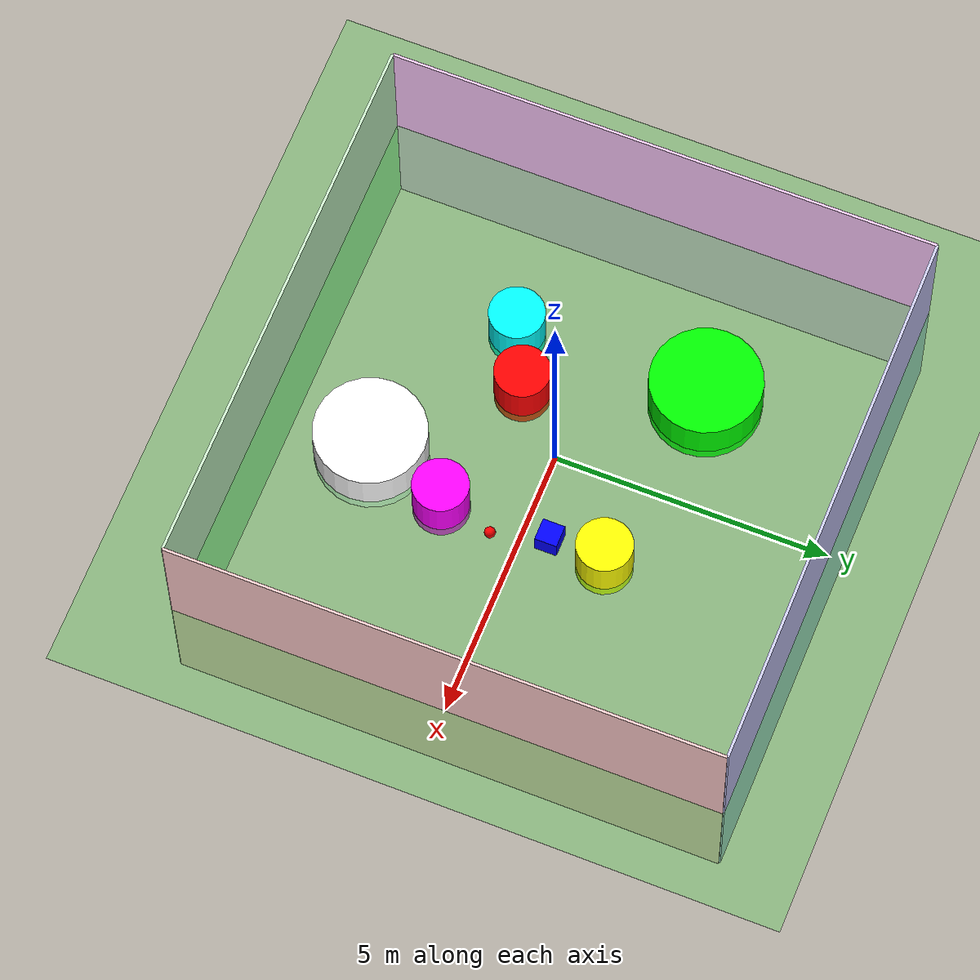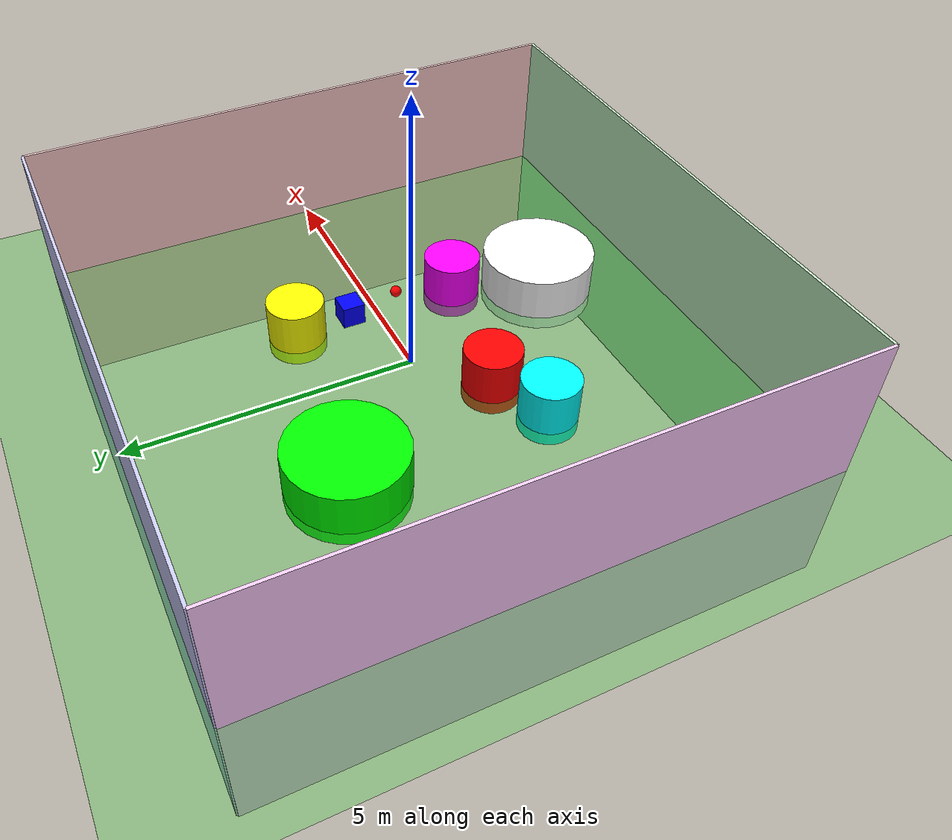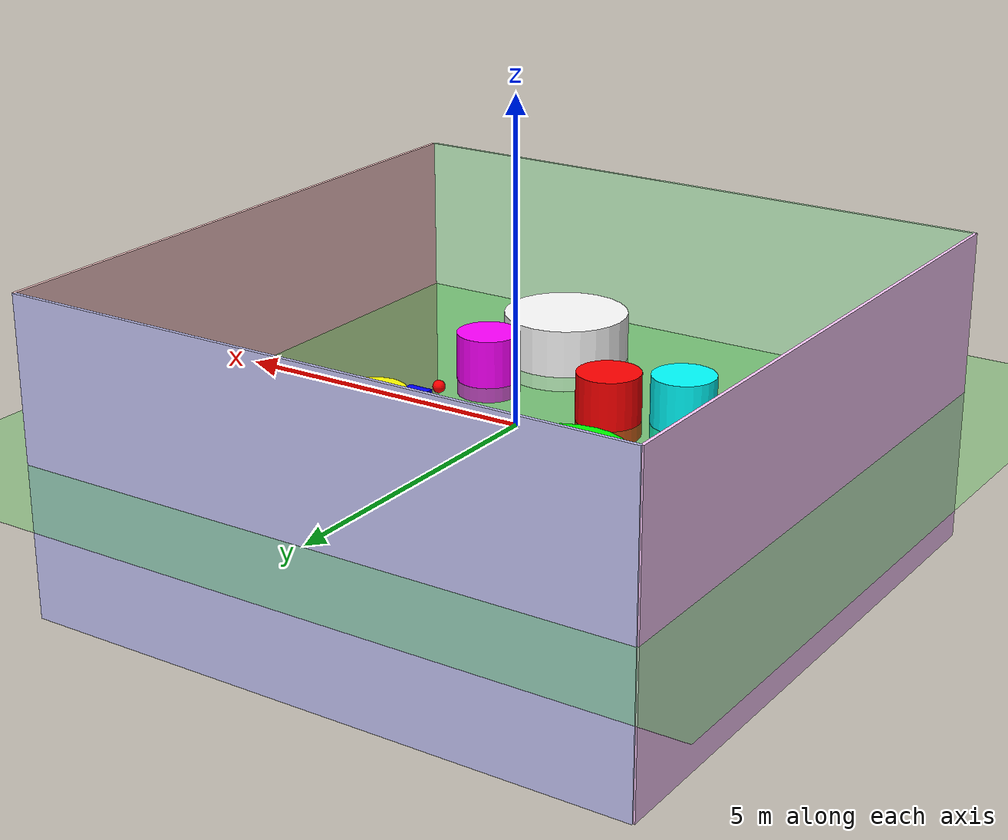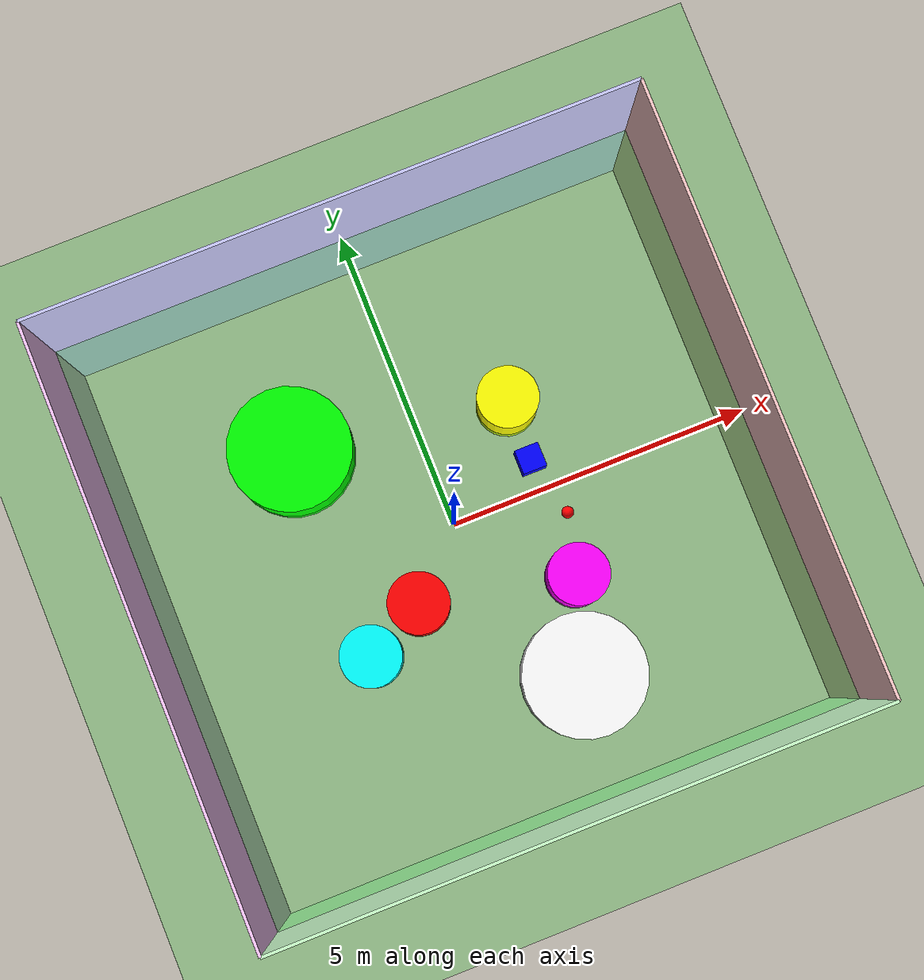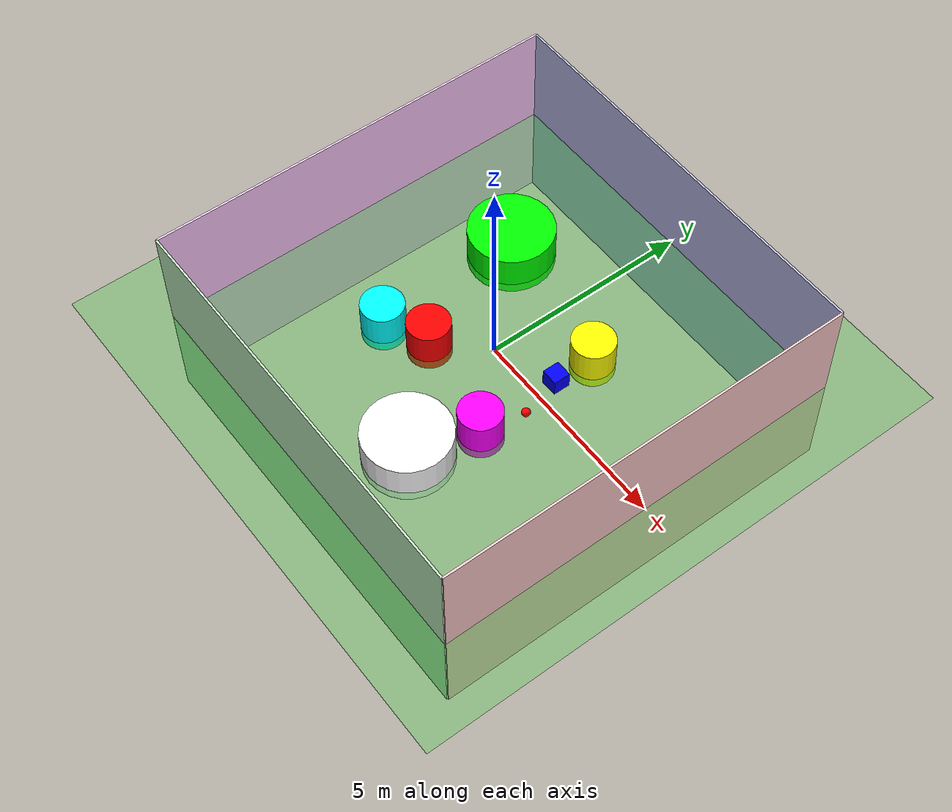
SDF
<?xml version="1.0" ?>
<sdf version="1.8">
  <world name="dogworld">
    <physics name="1ms" type="ignored">
      <max_step_size>0.001</max_step_size>
      <real_time_factor>1.0</real_time_factor>
    </physics>

    <!-- Plugins -->
    <plugin
      filename="gz-sim-physics-system"
      name="gz::sim::systems::Physics">
    </plugin>
    <plugin
      filename="gz-sim-sensors-system"
      name="gz::sim::systems::Sensors">
      <render_engine>ogre2</render_engine>
    </plugin>
    <plugin
      filename="gz-sim-user-commands-system"
      name="gz::sim::systems::UserCommands">
    </plugin>
    <plugin
      filename="gz-sim-scene-broadcaster-system"
      name="gz::sim::systems::SceneBroadcaster">
    </plugin>

    <gui fullscreen="0">
        <plugin filename="ImageDisplay" name="Image Display">
          <ignition-gui>
            <property key="state" type="string">docked</property>
          </ignition-gui>
        </plugin>
    </gui>

    <!-- Lights -->
    <light type="directional" name="sun">
      <cast_shadows>true</cast_shadows>
      <pose>0 0 10 0 0 0</pose>
      <diffuse>0.8 0.8 0.8 1</diffuse>
      <specular>0.2 0.2 0.2 1</specular>
      <attenuation>
        <range>1000</range>
        <constant>0.9</constant>
        <linear>0.01</linear>
        <quadratic>0.001</quadratic>
      </attenuation>
      <direction>-0.5 0.1 -0.9</direction>
    </light>

    <!-- Ground Plane -->
    <model name="ground_plane">
      <static>true</static>
      <link name="link">
        <collision name="collision">
          <geometry>
            <plane>
              <normal>0 0 1</normal>
              <size>100 100</size>
            </plane>
          </geometry>
        </collision>
        <visual name="visual">
          <geometry>
            <plane>
              <normal>0 0 1</normal>
              <size>100 100</size>
            </plane>
          </geometry>
          <material>
            <ambient>0.2 0.8 0.2 1</ambient>
            <diffuse>0.2 0.8 0.2 1</diffuse>
            <specular>0.2 0.8 0.2 1</specular>
          </material>
        </visual>
      </link>
    </model>

    <!-- RedBall -->
    <model name="RedBall">
      <pose>1.75 -0.5 0.1 0 0 0</pose>
      <link name="sphere_link">
        <inertial>
          <inertia>
            <ixx>0.004</ixx>
            <ixy>0</ixy>
            <ixz>0</ixz>
            <iyy>0.004</iyy>
            <iyz>0</iyz>
            <izz>0.004</izz>
          </inertia>
          <mass>0.1</mass>
        </inertial>
        <collision name="sphere_collision">
          <geometry>
            <sphere>
              <radius>0.1</radius>
            </sphere>
          </geometry>
        </collision>
        <visual name="sphere_visual">
          <geometry>
            <sphere>
              <radius>0.1</radius>
            </sphere>
          </geometry>
          <material>
            <ambient>1 0 0 1</ambient>
            <diffuse>1 0 0 1</diffuse>
            <specular>1 0 0 1</specular>
          </material>
        </visual>
      </link>
      <static>true</static>
    </model>

    <!-- BlueBox -->
    <model name="BlueBox">
      <pose>1.5 0.5 0.2 0 0 0</pose>
      <link name="box_link">
        <inertial>
          <inertia>
            <ixx>0.013</ixx>
            <ixy>0</ixy>
            <ixz>0</ixz>
            <iyy>0.013</iyy>
            <iyz>0</iyz>
            <izz>0.013</izz>
          </inertia>
          <mass>0.5</mass>
        </inertial>
        <collision name="box_collision">
          <geometry>
            <box>
              <size>0.4 0.4 0.4</size>
            </box>
          </geometry>
        </collision>
        <visual name="box_visual">
          <geometry>
            <box>
              <size>0.4 0.4 0.4</size>
            </box>
          </geometry>
          <material>
            <ambient>0 0 1 1</ambient>
            <diffuse>0 0 1 1</diffuse>
            <specular>0 0 1 1</specular>
          </material>
        </visual>
      </link>
      <static>true</static>
    </model>

    <!-- Yellow Cylinder -->
    <model name="yellow_cylinder">
      <pose>1.5 1.5 0.25 0 0 0</pose>
      <link name="cylinder1_link">
        <inertial>
          <inertia>
            <ixx>0.1458</ixx>
            <ixy>0</ixy>
            <ixz>0</ixz>
            <iyy>0.1458</iyy>
            <iyz>0</iyz>
            <izz>0.125</izz>
          </inertia>
          <mass>1.0</mass>
        </inertial>
        <collision name="cylinder1_collision">
          <geometry>
            <cylinder>
              <radius>0.5</radius>
              <length>1.0</length>
            </cylinder>
          </geometry>
        </collision>
        <visual name="cylinder1_visual">
          <geometry>
            <cylinder>
              <radius>0.5</radius>
              <length>1.0</length>
            </cylinder>
          </geometry>
          <material>
            <ambient>1 1 0 1</ambient>
            <diffuse>1 1 0 1</diffuse>
            <specular>1 1 0 1</specular>
          </material>
        </visual>
      </link>
      <static>true</static>
    </model>

    <!-- Cyan Cylinder -->
    <model name="cyan_cylinder">
      <pose>-2 -1.5 0.25 0 0 0</pose>
      <link name="cylinder2_link">
        <inertial>
          <inertia>
            <ixx>0.1458</ixx>
            <ixy>0</ixy>
            <ixz>0</ixz>
            <iyy>0.1458</iyy>
            <iyz>0</iyz>
            <izz>0.125</izz>
          </inertia>
          <mass>1.0</mass>
        </inertial>
        <collision name="cylinder2_collision">
          <geometry>
            <cylinder>
              <radius>0.5</radius>
              <length>1.0</length>
            </cylinder>
          </geometry>
        </collision>
        <visual name="cylinder2_visual">
          <geometry>
            <cylinder>
              <radius>0.5</radius>
              <length>1.0</length>
            </cylinder>
          </geometry>
          <material>
            <ambient>0 1 1 1</ambient>
            <diffuse>0 1 1 1</diffuse>
            <specular>0 1 1 1</specular>
          </material>
        </visual>
      </link>
      <static>true</static>
    </model>

    <!-- Magenta Cylinder -->
    <model name="magenta_cylider">
      <pose>1.5 -1.5 0.25 0 0 0</pose>
      <link name="cylinder3_link">
        <inertial>
          <inertia>
            <ixx>0.1458</ixx>
            <ixy>0</ixy>
            <ixz>0</ixz>
            <iyy>0.1458</iyy>
            <iyz>0</iyz>
            <izz>0.125</izz>
          </inertia>
          <mass>1.0</mass>
        </inertial>
        <collision name="cylinder3_collision">
          <geometry>
            <cylinder>
              <radius>0.5</radius>
              <length>1.0</length>
            </cylinder>
          </geometry>
        </collision>
        <visual name="cylinder3_visual">
          <geometry>
            <cylinder>
              <radius>0.5</radius>
              <length>1.0</length>
            </cylinder>
          </geometry>
          <material>
            <ambient>1 0 1 1</ambient>
            <diffuse>1 0 1 1</diffuse>
            <specular>1 0 1 1</specular>
          </material>
        </visual>
      </link>
      <static>true</static>
    </model>

    <!-- Red Cylinder -->
    <model name="red_cylider">
      <pose>-1 -1 0.25 0 0 0</pose>
      <link name="cylinder4_link">
        <inertial>
          <inertia>
            <ixx>0.1458</ixx>
            <ixy>0</ixy>
            <ixz>0</ixz>
            <iyy>0.1458</iyy>
            <iyz>0</iyz>
            <izz>0.125</izz>
          </inertia>
          <mass>1.0</mass>
        </inertial>
        <collision name="cylinder4_collision">
          <geometry>
            <cylinder>
              <radius>0.5</radius>
              <length>1.0</length>
            </cylinder>
          </geometry>
        </collision>
        <visual name="cylinder4_visual">
          <geometry>
            <cylinder>
              <radius>0.5</radius>
              <length>1.0</length>
            </cylinder>
          </geometry>
          <material>
            <ambient>1 0 0 1</ambient>
            <diffuse>1 0 0 1</diffuse>
            <specular>1 0 0 1</specular>
          </material>
        </visual>
      </link>
      <static>true</static>
    </model>

    <!-- White Cylinder -->
    <model name="white_cylinder">
      <pose>1 -3 0.25 0 0 0</pose>
      <link name="cylinder5_link">
        <inertial>
          <inertia>
            <ixx>0.5</ixx>
            <ixy>0</ixy>
            <ixz>0</ixz>
            <iyy>0.5</iyy>
            <iyz>0</iyz>
            <izz>1.0</izz>
          </inertia>
          <mass>2.0</mass>
        </inertial>
        <collision name="cylinder5_collision">
          <geometry>
            <cylinder>
              <radius>1.0</radius>
              <length>1.0</length>
            </cylinder>
          </geometry>
        </collision>
        <visual name="cylinder5_visual">
          <geometry>
            <cylinder>
              <radius>1.0</radius>
              <length>1.0</length>
            </cylinder>
          </geometry>
          <material>
            <ambient>1 1 1 1</ambient>
            <diffuse>1 1 1 1</diffuse>
            <specular>1 1 1 1</specular>
          </material>
        </visual>
      </link>
      <static>true</static>
    </model>

    <!-- Green Cylinder -->
    <model name="green_cylinder">
      <pose>-2 2 0.25 0 0 0</pose>
      <link name="cylinder6_link">
        <inertial>
          <inertia>
            <ixx>0.5</ixx>
            <ixy>0</ixy>
            <ixz>0</ixz>
            <iyy>0.5</iyy>
            <iyz>0</iyz>
            <izz>1.0</izz>
          </inertia>
          <mass>2.0</mass>
        </inertial>
        <collision name="cylinder6_collision">
          <geometry>
            <cylinder>
              <radius>1.0</radius>
              <length>1.0</length>
            </cylinder>
          </geometry>
        </collision>
        <visual name="cylinder6_visual">
          <geometry>
            <cylinder>
              <radius>1.0</radius>
              <length>1.0</length>
            </cylinder>
          </geometry>
          <material>
            <ambient>0 1 0 1</ambient>
            <diffuse>0 1 0 1</diffuse>
            <specular>0 1 0 1</specular>
          </material>
        </visual>
      </link>
      <static>true</static>
    </model>

    <!-- Walls -->
    <model name="wall1">
      <pose>0 5 0.05 0 0 0</pose>
      <link name="wall1_link">
        <inertial>
          <inertia>
            <ixx>100</ixx>
            <ixy>0</ixy>
            <ixz>0</ixz>
            <iyy>200</iyy>
            <iyz>0</iyz>
            <izz>100</izz>
          </inertia>
          <mass>10</mass>
        </inertial>
        <collision name="wall1_collision">
          <geometry>
            <box>
              <size>10 0.05 5</size>
            </box>
          </geometry>
        </collision>
        <visual name="wall1_visual">
          <geometry>
            <box>
              <size>10 0.05 5</size>
            </box>
          </geometry>
          <material>
            <ambient>0.8 0.8 1 1</ambient>
            <diffuse>0.8 0.8 1 1</diffuse>
            <specular>0.8 0.8 1 1</specular>
          </material>
        </visual>
      </link>
      <static>true</static>
    </model>

    <model name="wall2">
      <pose>0 -5 0.05 0 0 0</pose>
      <link name="wall2_link">
        <inertial>
          <inertia>
            <ixx>100</ixx>
            <ixy>0</ixy>
            <ixz>0</ixz>
            <iyy>200</iyy>
            <iyz>0</iyz>
            <izz>100</izz>
          </inertia>
          <mass>10</mass>
        </inertial>
        <collision name="wall2_collision">
          <geometry>
            <box>
              <size>10 0.05 5</size>
            </box>
          </geometry>
        </collision>
        <visual name="wall2_visual">
          <geometry>
            <box>
              <size>10 0.05 5</size>
            </box>
          </geometry>
          <material>
            <ambient>0.8 1 0.8 1</ambient>
            <diffuse>0.8 1 0.8 1</diffuse>
            <specular>0.8 1 0.8 1</specular>
          </material>
        </visual>
      </link>
      <static>true</static>
    </model>

    <model name="wall3">
      <pose>5 0 0.05 0 0 0</pose>
      <link name="wall3_link">
        <inertial>
          <inertia>
            <ixx>200</ixx>
            <ixy>0</ixy>
            <ixz>0</ixz>
            <iyy>100</iyy>
            <iyz>0</iyz>
            <izz>100</izz>
          </inertia>
          <mass>10</mass>
        </inertial>
        <collision name="wall3_collision">
          <geometry>
            <box>
              <size>0.05 10 5</size>
            </box>
          </geometry>
        </collision>
        <visual name="wall3_visual">
          <geometry>
            <box>
              <size>0.05 10 5</size>
            </box>
          </geometry>
          <material>
            <ambient>1 0.8 0.8 1</ambient>
            <diffuse>1 0.8 0.8 1</diffuse>
            <specular>1 0.8 0.8 1</specular>
          </material>
        </visual>
      </link>
      <static>true</static>
    </model>

    <model name="wall4">
      <pose>-5 0 0.05 0 0 0</pose>
      <link name="wall4_link">
        <inertial>
          <inertia>
            <ixx>200</ixx>
            <ixy>0</ixy>
            <ixz>0</ixz>
            <iyy>100</iyy>
            <iyz>0</iyz>
            <izz>100</izz>
          </inertia>
          <mass>10</mass>
        </inertial>
        <collision name="wall4_collision">
          <geometry>
            <box>
              <size>0.05 10 5</size>
            </box>
          </geometry>
        </collision>
        <visual name="wall4_visual">
          <geometry>
            <box>
              <size>0.05 10 5</size>
            </box>
          </geometry>
          <material>
            <ambient>1 0.8 1 1</ambient>
            <diffuse>1 0.8 1 1</diffuse>
            <specular>1 0.8 1 1</specular>
          </material>
        </visual>
      </link>
      <static>true</static>
    </model>
  </world>
</sdf>
